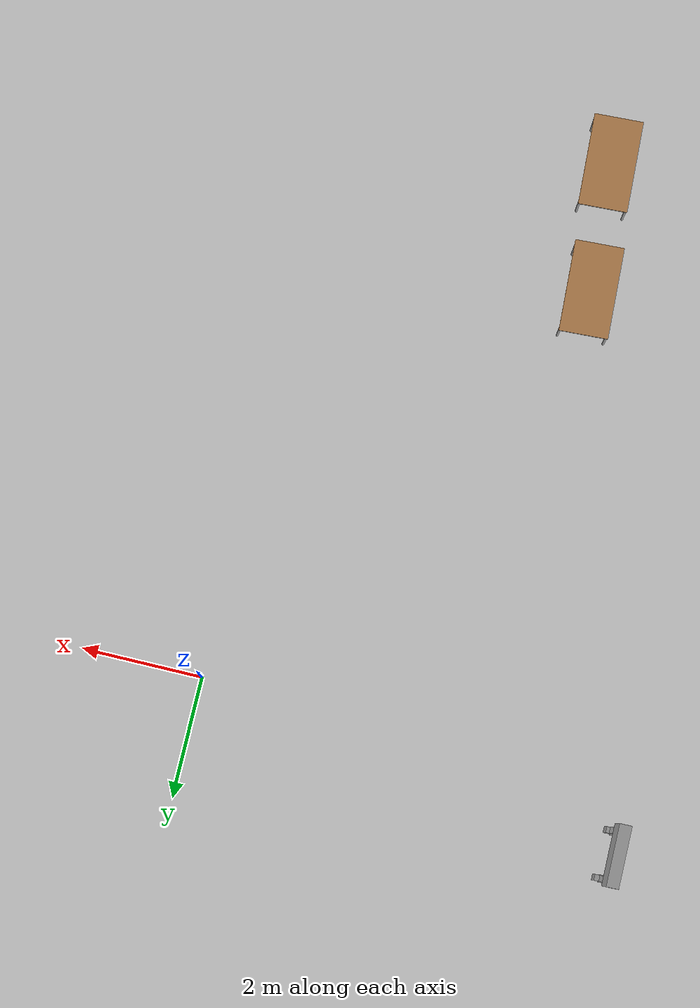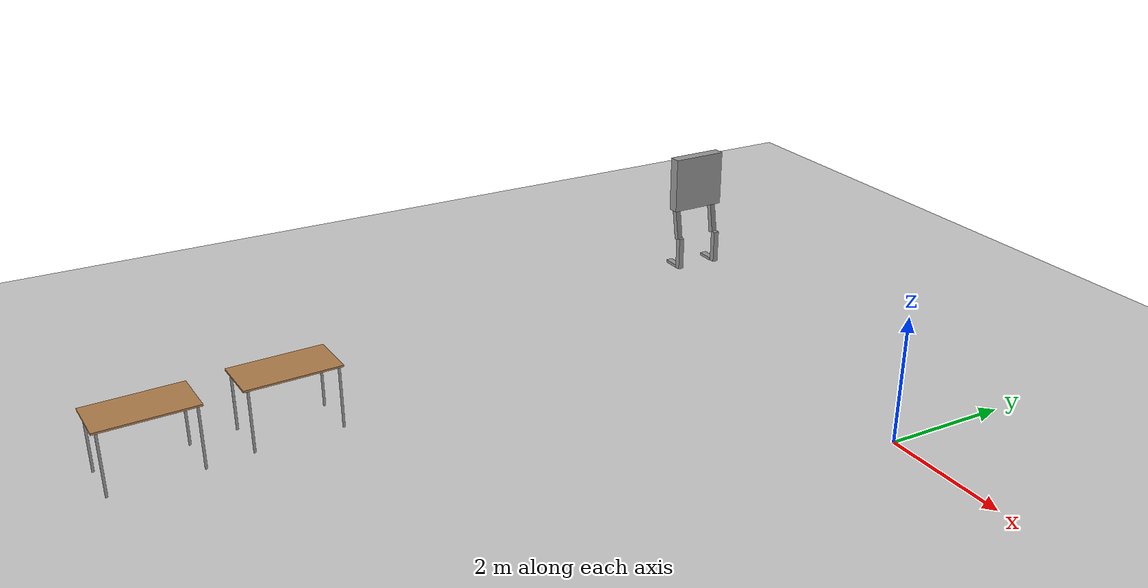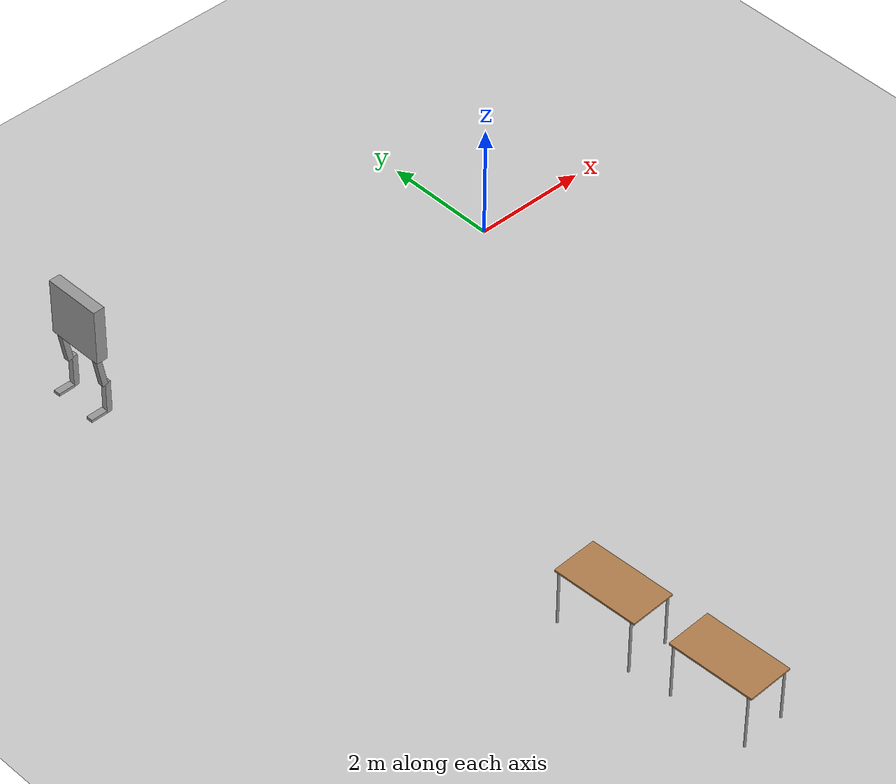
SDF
<sdf version="1.7">
 <world name="default">
  <model name="ground_plane">
   <static>1</static>
   <link name="link">
    <collision name="collision">
     <geometry><plane><normal>0 0 1</normal><size>100 100</size></plane></geometry>
     <surface>
      <contact><collide_bitmask>65535</collide_bitmask></contact>
      <friction><ode><mu>100</mu><mu2>50</mu2></ode></friction>
     </surface>
    </collision>
    <visual name="visual">
     <cast_shadows>0</cast_shadows>
     <geometry><plane><normal>0 0 1</normal><size>100 100</size></plane></geometry>
     <material>
      <script><uri>file://media/materials/scripts/gazebo.material</uri><name>Gazebo/Grey</name></script>
     </material>
    </visual>
   </link>
  </model>
  <model name="robot_clone">
   <link name="link_0">
    <inertial>
     <mass>1</mass>
     <inertia>
      <ixx>0.166667</ixx>
      <ixy>0</ixy>
      <ixz>0</ixz>
      <iyy>0.166667</iyy>
      <iyz>0</iyz>
      <izz>0.166667</izz>
     </inertia>
    </inertial>
    <pose>-0.102564 -0.385129 -0.54615 0 -0 0</pose>
    <visual name="visual">
     <geometry><box><size>0.3 0.12 0.05</size></box></geometry>
     <material>
      <lighting>1</lighting>
      <script><uri>file://media/materials/scripts/gazebo.material</uri><name>Gazebo/Grey</name></script>
      <shader type="pixel"><normal_map>__default__</normal_map></shader>
      <ambient>0.3 0.3 0.3 1</ambient>
      <diffuse>0.7 0.7 0.7 1</diffuse>
      <specular>0.01 0.01 0.01 1</specular>
      <emissive>0 0 0 1</emissive>
     </material>
    </visual>
    <collision name="collision">
     <geometry><box><size>0.3 0.12 0.05</size></box></geometry>
     <surface>
      <friction>
       <ode><mu>1</mu><mu2>1</mu2><fdir1>0 0 0</fdir1><slip1>0</slip1><slip2>0</slip2></ode>
       <torsional>
        <coefficient>1</coefficient>
        <patch_radius>0</patch_radius>
        <surface_radius>0</surface_radius>
        <use_patch_radius>1</use_patch_radius>
        <ode><slip>0</slip></ode>
       </torsional>
      </friction>
      <bounce><restitution_coefficient>0</restitution_coefficient><threshold>1e+06</threshold></bounce>
      <contact>
       <collide_without_contact>0</collide_without_contact>
       <collide_without_contact_bitmask>1</collide_without_contact_bitmask>
       <collide_bitmask>1</collide_bitmask>
       <ode>
        <soft_cfm>0</soft_cfm>
        <soft_erp>0.2</soft_erp>
        <kp>1e+13</kp>
        <kd>1</kd>
        <max_vel>0.01</max_vel>
        <min_depth>0</min_depth>
       </ode>
       <bullet>
        <split_impulse>1</split_impulse>
        <split_impulse_penetration_threshold>-0.01</split_impulse_penetration_threshold>
        <soft_cfm>0</soft_cfm>
        <soft_erp>0.2</soft_erp>
        <kp>1e+13</kp>
        <kd>1</kd>
       </bullet>
      </contact>
     </surface>
    </collision>
   </link>
   <link name="link_0_clone">
    <inertial>
     <mass>1</mass>
     <inertia>
      <ixx>0.166667</ixx>
      <ixy>0</ixy>
      <ixz>0</ixz>
      <iyy>0.166667</iyy>
      <iyz>0</iyz>
      <izz>0.166667</izz>
     </inertia>
    </inertial>
    <pose>-0.07904 0.389881 -0.55115 0 -0 0</pose>
    <visual name="visual">
     <geometry><box><size>0.3 0.12 0.05</size></box></geometry>
     <material>
      <lighting>1</lighting>
      <script><uri>file://media/materials/scripts/gazebo.material</uri><name>Gazebo/Grey</name></script>
      <shader type="pixel"><normal_map>__default__</normal_map></shader>
      <ambient>0.3 0.3 0.3 1</ambient>
      <diffuse>0.7 0.7 0.7 1</diffuse>
      <specular>0.01 0.01 0.01 1</specular>
      <emissive>0 0 0 1</emissive>
     </material>
    </visual>
    <collision name="collision">
     <geometry><box><size>0.3 0.12 0.05</size></box></geometry>
     <surface>
      <friction>
       <ode><mu>1</mu><mu2>1</mu2><fdir1>0 0 0</fdir1><slip1>0</slip1><slip2>0</slip2></ode>
       <torsional>
        <coefficient>1</coefficient>
        <patch_radius>0</patch_radius>
        <surface_radius>0</surface_radius>
        <use_patch_radius>1</use_patch_radius>
        <ode><slip>0</slip></ode>
       </torsional>
      </friction>
      <bounce><restitution_coefficient>0</restitution_coefficient><threshold>1e+06</threshold></bounce>
      <contact>
       <collide_without_contact>0</collide_without_contact>
       <collide_without_contact_bitmask>1</collide_without_contact_bitmask>
       <collide_bitmask>1</collide_bitmask>
       <ode>
        <soft_cfm>0</soft_cfm>
        <soft_erp>0.2</soft_erp>
        <kp>1e+13</kp>
        <kd>1</kd>
        <max_vel>0.01</max_vel>
        <min_depth>0</min_depth>
       </ode>
       <bullet>
        <split_impulse>1</split_impulse>
        <split_impulse_penetration_threshold>-0.01</split_impulse_penetration_threshold>
        <soft_cfm>0</soft_cfm>
        <soft_erp>0.2</soft_erp>
        <kp>1e+13</kp>
        <kd>1</kd>
       </bullet>
      </contact>
     </surface>
    </collision>
   </link>
   <link name="link_1">
    <inertial>
     <mass>1</mass>
     <inertia>
      <ixx>0.166667</ixx>
      <ixy>0</ixy>
      <ixz>0</ixz>
      <iyy>0.166667</iyy>
      <iyz>0</iyz>
      <izz>0.166667</izz>
     </inertia>
    </inertial>
    <pose>0.097436 -0.390129 -0.27615 0 -0 0</pose>
    <visual name="visual">
     <geometry><box><size>0.1 0.1 0.6</size></box></geometry>
     <material>
      <lighting>1</lighting>
      <script><uri>file://media/materials/scripts/gazebo.material</uri><name>Gazebo/Grey</name></script>
      <shader type="pixel"><normal_map>__default__</normal_map></shader>
      <ambient>0.3 0.3 0.3 1</ambient>
      <diffuse>0.7 0.7 0.7 1</diffuse>
      <specular>0.01 0.01 0.01 1</specular>
      <emissive>0 0 0 1</emissive>
     </material>
    </visual>
    <collision name="collision">
     <geometry><box><size>0.1 0.1 0.6</size></box></geometry>
     <surface>
      <friction>
       <ode><mu>1</mu><mu2>1</mu2><fdir1>0 0 0</fdir1><slip1>0</slip1><slip2>0</slip2></ode>
       <torsional>
        <coefficient>1</coefficient>
        <patch_radius>0</patch_radius>
        <surface_radius>0</surface_radius>
        <use_patch_radius>1</use_patch_radius>
        <ode><slip>0</slip></ode>
       </torsional>
      </friction>
      <bounce><restitution_coefficient>0</restitution_coefficient><threshold>1e+06</threshold></bounce>
      <contact>
       <collide_without_contact>0</collide_without_contact>
       <collide_without_contact_bitmask>1</collide_without_contact_bitmask>
       <collide_bitmask>1</collide_bitmask>
       <ode>
        <soft_cfm>0</soft_cfm>
        <soft_erp>0.2</soft_erp>
        <kp>1e+13</kp>
        <kd>1</kd>
        <max_vel>0.01</max_vel>
        <min_depth>0</min_depth>
       </ode>
       <bullet>
        <split_impulse>1</split_impulse>
        <split_impulse_penetration_threshold>-0.01</split_impulse_penetration_threshold>
        <soft_cfm>0</soft_cfm>
        <soft_erp>0.2</soft_erp>
        <kp>1e+13</kp>
        <kd>1</kd>
       </bullet>
      </contact>
     </surface>
    </collision>
   </link>
   <link name="link_1_clone">
    <inertial>
     <mass>1</mass>
     <inertia>
      <ixx>0.166667</ixx>
      <ixy>0</ixy>
      <ixz>0</ixz>
      <iyy>0.166667</iyy>
      <iyz>0</iyz>
      <izz>0.166667</izz>
     </inertia>
    </inertial>
    <pose>0.12096 0.389881 -0.27615 0 -0 0</pose>
    <visual name="visual">
     <geometry><box><size>0.1 0.1 0.6</size></box></geometry>
     <material>
      <lighting>1</lighting>
      <script><uri>file://media/materials/scripts/gazebo.material</uri><name>Gazebo/Grey</name></script>
      <shader type="pixel"><normal_map>__default__</normal_map></shader>
      <ambient>0.3 0.3 0.3 1</ambient>
      <diffuse>0.7 0.7 0.7 1</diffuse>
      <specular>0.01 0.01 0.01 1</specular>
      <emissive>0 0 0 1</emissive>
     </material>
    </visual>
    <collision name="collision">
     <geometry><box><size>0.1 0.1 0.6</size></box></geometry>
     <surface>
      <friction>
       <ode><mu>1</mu><mu2>1</mu2><fdir1>0 0 0</fdir1><slip1>0</slip1><slip2>0</slip2></ode>
       <torsional>
        <coefficient>1</coefficient>
        <patch_radius>0</patch_radius>
        <surface_radius>0</surface_radius>
        <use_patch_radius>1</use_patch_radius>
        <ode><slip>0</slip></ode>
       </torsional>
      </friction>
      <bounce><restitution_coefficient>0</restitution_coefficient><threshold>1e+06</threshold></bounce>
      <contact>
       <collide_without_contact>0</collide_without_contact>
       <collide_without_contact_bitmask>1</collide_without_contact_bitmask>
       <collide_bitmask>1</collide_bitmask>
       <ode>
        <soft_cfm>0</soft_cfm>
        <soft_erp>0.2</soft_erp>
        <kp>1e+13</kp>
        <kd>1</kd>
        <max_vel>0.01</max_vel>
        <min_depth>0</min_depth>
       </ode>
       <bullet>
        <split_impulse>1</split_impulse>
        <split_impulse_penetration_threshold>-0.01</split_impulse_penetration_threshold>
        <soft_cfm>0</soft_cfm>
        <soft_erp>0.2</soft_erp>
        <kp>1e+13</kp>
        <kd>1</kd>
       </bullet>
      </contact>
     </surface>
    </collision>
   </link>
   <link name="link_1_clone_clone_clone">
    <inertial>
     <mass>1</mass>
     <inertia>
      <ixx>0.166667</ixx>
      <ixy>0</ixy>
      <ixz>0</ixz>
      <iyy>0.166667</iyy>
      <iyz>0</iyz>
      <izz>0.166667</izz>
     </inertia>
    </inertial>
    <pose>-0.005591 0.389882 0.28797 0 -0.175856 0</pose>
    <visual name="visual">
     <geometry><box><size>0.1 0.1 0.6</size></box></geometry>
     <material>
      <lighting>1</lighting>
      <script><uri>file://media/materials/scripts/gazebo.material</uri><name>Gazebo/Grey</name></script>
      <shader type="pixel"><normal_map>__default__</normal_map></shader>
      <ambient>0.3 0.3 0.3 1</ambient>
      <diffuse>0.7 0.7 0.7 1</diffuse>
      <specular>0.01 0.01 0.01 1</specular>
      <emissive>0 0 0 1</emissive>
     </material>
    </visual>
    <collision name="collision">
     <geometry><box><size>0.1 0.1 0.6</size></box></geometry>
     <surface>
      <friction>
       <ode><mu>1</mu><mu2>1</mu2><fdir1>0 0 0</fdir1><slip1>0</slip1><slip2>0</slip2></ode>
       <torsional>
        <coefficient>1</coefficient>
        <patch_radius>0</patch_radius>
        <surface_radius>0</surface_radius>
        <use_patch_radius>1</use_patch_radius>
        <ode><slip>0</slip></ode>
       </torsional>
      </friction>
      <bounce><restitution_coefficient>0</restitution_coefficient><threshold>1e+06</threshold></bounce>
      <contact>
       <collide_without_contact>0</collide_without_contact>
       <collide_without_contact_bitmask>1</collide_without_contact_bitmask>
       <collide_bitmask>1</collide_bitmask>
       <ode>
        <soft_cfm>0</soft_cfm>
        <soft_erp>0.2</soft_erp>
        <kp>1e+13</kp>
        <kd>1</kd>
        <max_vel>0.01</max_vel>
        <min_depth>0</min_depth>
       </ode>
       <bullet>
        <split_impulse>1</split_impulse>
        <split_impulse_penetration_threshold>-0.01</split_impulse_penetration_threshold>
        <soft_cfm>0</soft_cfm>
        <soft_erp>0.2</soft_erp>
        <kp>1e+13</kp>
        <kd>1</kd>
       </bullet>
      </contact>
     </surface>
    </collision>
   </link>
   <link name="link_1_clone_clone_clone_clone">
    <inertial>
     <mass>1</mass>
     <inertia>
      <ixx>0.166667</ixx>
      <ixy>0</ixy>
      <ixz>0</ixz>
      <iyy>0.166667</iyy>
      <iyz>0</iyz>
      <izz>0.166667</izz>
     </inertia>
    </inertial>
    <pose>-0.005591 -0.395129 0.29797 0 -0.175856 0</pose>
    <visual name="visual">
     <geometry><box><size>0.1 0.1 0.6</size></box></geometry>
     <material>
      <lighting>1</lighting>
      <script><uri>file://media/materials/scripts/gazebo.material</uri><name>Gazebo/Grey</name></script>
      <shader type="pixel"><normal_map>__default__</normal_map></shader>
      <ambient>0.3 0.3 0.3 1</ambient>
      <diffuse>0.7 0.7 0.7 1</diffuse>
      <specular>0.01 0.01 0.01 1</specular>
      <emissive>0 0 0 1</emissive>
     </material>
    </visual>
    <collision name="collision">
     <geometry><box><size>0.1 0.1 0.6</size></box></geometry>
     <surface>
      <friction>
       <ode><mu>1</mu><mu2>1</mu2><fdir1>0 0 0</fdir1><slip1>0</slip1><slip2>0</slip2></ode>
       <torsional>
        <coefficient>1</coefficient>
        <patch_radius>0</patch_radius>
        <surface_radius>0</surface_radius>
        <use_patch_radius>1</use_patch_radius>
        <ode><slip>0</slip></ode>
       </torsional>
      </friction>
      <bounce><restitution_coefficient>0</restitution_coefficient><threshold>1e+06</threshold></bounce>
      <contact>
       <collide_without_contact>0</collide_without_contact>
       <collide_without_contact_bitmask>1</collide_without_contact_bitmask>
       <collide_bitmask>1</collide_bitmask>
       <ode>
        <soft_cfm>0</soft_cfm>
        <soft_erp>0.2</soft_erp>
        <kp>1e+13</kp>
        <kd>1</kd>
        <max_vel>0.01</max_vel>
        <min_depth>0</min_depth>
       </ode>
       <bullet>
        <split_impulse>1</split_impulse>
        <split_impulse_penetration_threshold>-0.01</split_impulse_penetration_threshold>
        <soft_cfm>0</soft_cfm>
        <soft_erp>0.2</soft_erp>
        <kp>1e+13</kp>
        <kd>1</kd>
       </bullet>
      </contact>
     </surface>
    </collision>
   </link>
   <link name="link_3">
    <inertial>
     <mass>1</mass>
     <inertia>
      <ixx>0.166667</ixx>
      <ixy>0</ixy>
      <ixz>0</ixz>
      <iyy>0.166667</iyy>
      <iyz>0</iyz>
      <izz>0.166667</izz>
     </inertia>
    </inertial>
    <pose>-0.025591 0.000743 1.06366 0 -0 0</pose>
    <visual name="visual">
     <geometry><box><size>0.2 1 1</size></box></geometry>
     <material>
      <lighting>1</lighting>
      <script><uri>file://media/materials/scripts/gazebo.material</uri><name>Gazebo/Grey</name></script>
      <shader type="pixel"><normal_map>__default__</normal_map></shader>
      <ambient>0.3 0.3 0.3 1</ambient>
      <diffuse>0.7 0.7 0.7 1</diffuse>
      <specular>0.01 0.01 0.01 1</specular>
      <emissive>0 0 0 1</emissive>
     </material>
    </visual>
    <collision name="collision">
     <geometry><box><size>0.2 1 1</size></box></geometry>
     <surface>
      <friction>
       <ode><mu>1</mu><mu2>1</mu2><fdir1>0 0 0</fdir1><slip1>0</slip1><slip2>0</slip2></ode>
       <torsional>
        <coefficient>1</coefficient>
        <patch_radius>0</patch_radius>
        <surface_radius>0</surface_radius>
        <use_patch_radius>1</use_patch_radius>
        <ode><slip>0</slip></ode>
       </torsional>
      </friction>
      <bounce><restitution_coefficient>0</restitution_coefficient><threshold>1e+06</threshold></bounce>
      <contact>
       <collide_without_contact>0</collide_without_contact>
       <collide_without_contact_bitmask>1</collide_without_contact_bitmask>
       <collide_bitmask>1</collide_bitmask>
       <ode>
        <soft_cfm>0</soft_cfm>
        <soft_erp>0.2</soft_erp>
        <kp>1e+13</kp>
        <kd>1</kd>
        <max_vel>0.01</max_vel>
        <min_depth>0</min_depth>
       </ode>
       <bullet>
        <split_impulse>1</split_impulse>
        <split_impulse_penetration_threshold>-0.01</split_impulse_penetration_threshold>
        <soft_cfm>0</soft_cfm>
        <soft_erp>0.2</soft_erp>
        <kp>1e+13</kp>
        <kd>1</kd>
       </bullet>
      </contact>
     </surface>
    </collision>
   </link>
   <joint name="link_1_JOINT_6" type="revolute">
    <parent>link_1</parent>
    <child>link_1_clone_clone_clone_clone</child>
    <axis>
     <xyz>1 0 0</xyz>
     <limit>
      <lower>-1.79769e+308</lower>
      <upper>1.79769e+308</upper>
      <effort>-1</effort>
      <velocity>-1</velocity>
     </limit>
     <dynamics>
      <spring_reference>0</spring_reference>
      <spring_stiffness>0</spring_stiffness>
      <damping>0</damping>
     </dynamics>
    </axis>
    <physics>
     <ode><limit><cfm>0</cfm><erp>0.2</erp></limit><suspension><cfm>0</cfm><erp>0.2</erp></suspension></ode>
    </physics>
   </joint>
   <joint name="link_1_clone_JOINT_2" type="revolute">
    <parent>link_1_clone</parent>
    <child>link_0_clone</child>
    <axis>
     <xyz>1 0 0</xyz>
     <limit>
      <lower>-1.79769e+308</lower>
      <upper>1.79769e+308</upper>
      <effort>-1</effort>
      <velocity>-1</velocity>
     </limit>
     <dynamics>
      <spring_reference>0</spring_reference>
      <spring_stiffness>0</spring_stiffness>
      <damping>0</damping>
     </dynamics>
    </axis>
    <physics>
     <ode><limit><cfm>0</cfm><erp>0.2</erp></limit><suspension><cfm>0</cfm><erp>0.2</erp></suspension></ode>
    </physics>
   </joint>
   <joint name="link_1_clone_JOINT_5" type="revolute">
    <parent>link_1_clone</parent>
    <child>link_1_clone_clone_clone</child>
    <pose>0 0 -0.05 0 -0 0</pose>
    <axis>
     <xyz>1 0 0</xyz>
     <limit>
      <lower>-1.79769e+308</lower>
      <upper>1.79769e+308</upper>
      <effort>-1</effort>
      <velocity>-1</velocity>
     </limit>
     <dynamics>
      <spring_reference>0</spring_reference>
      <spring_stiffness>0</spring_stiffness>
      <damping>0</damping>
     </dynamics>
    </axis>
    <physics>
     <ode><limit><cfm>0</cfm><erp>0.2</erp></limit><suspension><cfm>0</cfm><erp>0.2</erp></suspension></ode>
    </physics>
   </joint>
   <joint name="link_3_JOINT_7" type="revolute">
    <parent>link_3</parent>
    <child>link_1_clone_clone_clone_clone</child>
    <axis>
     <xyz>1 0 0</xyz>
     <limit>
      <lower>-1.79769e+308</lower>
      <upper>1.79769e+308</upper>
      <effort>-1</effort>
      <velocity>-1</velocity>
     </limit>
     <dynamics>
      <spring_reference>0</spring_reference>
      <spring_stiffness>0</spring_stiffness>
      <damping>0</damping>
     </dynamics>
    </axis>
    <physics>
     <ode><limit><cfm>0</cfm><erp>0.2</erp></limit><suspension><cfm>0</cfm><erp>0.2</erp></suspension></ode>
    </physics>
   </joint>
   <joint name="link_3_JOINT_8" type="revolute">
    <parent>link_3</parent>
    <child>link_1_clone_clone_clone</child>
    <axis>
     <xyz>1 0 0</xyz>
     <limit>
      <lower>-1.79769e+308</lower>
      <upper>1.79769e+308</upper>
      <effort>-1</effort>
      <velocity>-1</velocity>
     </limit>
     <dynamics>
      <spring_reference>0</spring_reference>
      <spring_stiffness>0</spring_stiffness>
      <damping>0</damping>
     </dynamics>
    </axis>
    <physics>
     <ode><limit><cfm>0</cfm><erp>0.2</erp></limit><suspension><cfm>0</cfm><erp>0.2</erp></suspension></ode>
    </physics>
   </joint>
   <static>0</static>
   <pose>-7.01588 1.25632 0.57115 0 -1e-06 0.014032</pose>
  </model>
  <model name="table_clone_2">
   <static>1</static>
   <link name="link">
    <collision name="surface">
     <pose>0 0 1 0 -0 0</pose>
     <geometry><box><size>1.5 0.8 0.03</size></box></geometry>
     <surface><friction><ode><mu>0.6</mu><mu2>0.6</mu2></ode></friction></surface>
    </collision>
    <visual name="visual1">
     <pose>0 0 1 0 -0 0</pose>
     <geometry><box><size>1.5 0.8 0.03</size></box></geometry>
     <material>
      <script><uri>file://media/materials/scripts/gazebo.material</uri><name>Gazebo/Wood</name></script>
     </material>
    </visual>
    <collision name="front_left_leg">
     <pose>0.68 0.38 0.5 0 -0 0</pose>
     <geometry><cylinder><radius>0.02</radius><length>1</length></cylinder></geometry>
    </collision>
    <visual name="front_left_leg">
     <pose>0.68 0.38 0.5 0 -0 0</pose>
     <geometry><cylinder><radius>0.02</radius><length>1</length></cylinder></geometry>
     <material>
      <script><uri>file://media/materials/scripts/gazebo.material</uri><name>Gazebo/Grey</name></script>
     </material>
    </visual>
    <collision name="front_right_leg">
     <pose>0.68 -0.38 0.5 0 -0 0</pose>
     <geometry><cylinder><radius>0.02</radius><length>1</length></cylinder></geometry>
    </collision>
    <visual name="front_right_leg">
     <pose>0.68 -0.38 0.5 0 -0 0</pose>
     <geometry><cylinder><radius>0.02</radius><length>1</length></cylinder></geometry>
     <material>
      <script><uri>file://media/materials/scripts/gazebo.material</uri><name>Gazebo/Grey</name></script>
     </material>
    </visual>
    <collision name="back_right_leg">
     <pose>-0.68 -0.38 0.5 0 -0 0</pose>
     <geometry><cylinder><radius>0.02</radius><length>1</length></cylinder></geometry>
    </collision>
    <visual name="back_right_leg">
     <pose>-0.68 -0.38 0.5 0 -0 0</pose>
     <geometry><cylinder><radius>0.02</radius><length>1</length></cylinder></geometry>
     <material>
      <script><uri>file://media/materials/scripts/gazebo.material</uri><name>Gazebo/Grey</name></script>
     </material>
    </visual>
    <collision name="back_left_leg">
     <pose>-0.68 0.38 0.5 0 -0 0</pose>
     <geometry><cylinder><radius>0.02</radius><length>1</length></cylinder></geometry>
    </collision>
    <visual name="back_left_leg">
     <pose>-0.68 0.38 0.5 0 -0 0</pose>
     <geometry><cylinder><radius>0.02</radius><length>1</length></cylinder></geometry>
     <material>
      <script><uri>file://media/materials/scripts/gazebo.material</uri><name>Gazebo/Grey</name></script>
     </material>
    </visual>
   </link>
   <pose>-4.48349 -9.54902 0 0 0 -1.52183</pose>
  </model>
  <model name="table_clone_2_clone_3">
   <static>1</static>
   <link name="link">
    <collision name="surface">
     <pose>0 0 1 0 -0 0</pose>
     <geometry><box><size>1.5 0.8 0.03</size></box></geometry>
     <surface><friction><ode><mu>0.6</mu><mu2>0.6</mu2></ode></friction></surface>
    </collision>
    <visual name="visual1">
     <pose>0 0 1 0 -0 0</pose>
     <geometry><box><size>1.5 0.8 0.03</size></box></geometry>
     <material>
      <script><uri>file://media/materials/scripts/gazebo.material</uri><name>Gazebo/Wood</name></script>
     </material>
    </visual>
    <collision name="front_left_leg">
     <pose>0.68 0.38 0.5 0 -0 0</pose>
     <geometry><cylinder><radius>0.02</radius><length>1</length></cylinder></geometry>
    </collision>
    <visual name="front_left_leg">
     <pose>0.68 0.38 0.5 0 -0 0</pose>
     <geometry><cylinder><radius>0.02</radius><length>1</length></cylinder></geometry>
     <material>
      <script><uri>file://media/materials/scripts/gazebo.material</uri><name>Gazebo/Grey</name></script>
     </material>
    </visual>
    <collision name="front_right_leg">
     <pose>0.68 -0.38 0.5 0 -0 0</pose>
     <geometry><cylinder><radius>0.02</radius><length>1</length></cylinder></geometry>
    </collision>
    <visual name="front_right_leg">
     <pose>0.68 -0.38 0.5 0 -0 0</pose>
     <geometry><cylinder><radius>0.02</radius><length>1</length></cylinder></geometry>
     <material>
      <script><uri>file://media/materials/scripts/gazebo.material</uri><name>Gazebo/Grey</name></script>
     </material>
    </visual>
    <collision name="back_right_leg">
     <pose>-0.68 -0.38 0.5 0 -0 0</pose>
     <geometry><cylinder><radius>0.02</radius><length>1</length></cylinder></geometry>
    </collision>
    <visual name="back_right_leg">
     <pose>-0.68 -0.38 0.5 0 -0 0</pose>
     <geometry><cylinder><radius>0.02</radius><length>1</length></cylinder></geometry>
     <material>
      <script><uri>file://media/materials/scripts/gazebo.material</uri><name>Gazebo/Grey</name></script>
     </material>
    </visual>
    <collision name="back_left_leg">
     <pose>-0.68 0.38 0.5 0 -0 0</pose>
     <geometry><cylinder><radius>0.02</radius><length>1</length></cylinder></geometry>
    </collision>
    <visual name="back_left_leg">
     <pose>-0.68 0.38 0.5 0 -0 0</pose>
     <geometry><cylinder><radius>0.02</radius><length>1</length></cylinder></geometry>
     <material>
      <script><uri>file://media/materials/scripts/gazebo.material</uri><name>Gazebo/Grey</name></script>
     </material>
    </visual>
   </link>
   <pose>-4.64997 -7.472 0 0 0 -1.52183</pose>
  </model>
 </world>
</sdf>
